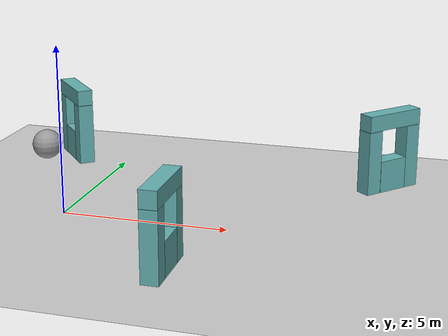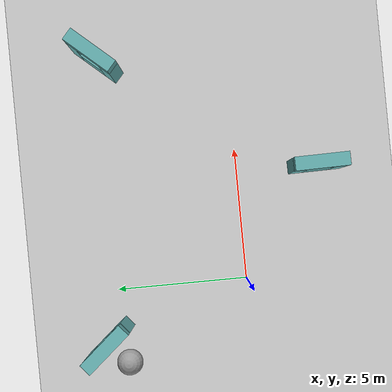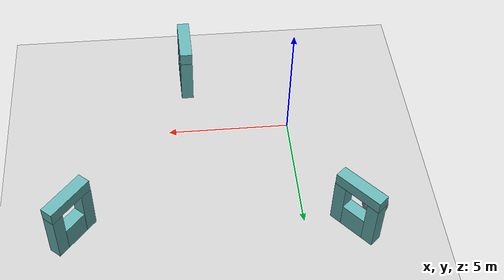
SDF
<sdf version="1.6">
 <world name="default">
  <model name="ground_plane">
   <static>1</static>
   <link name="link">
    <collision name="collision">
     <geometry><plane><normal>0 0 1</normal><size>100 100</size></plane></geometry>
     <surface>
      <contact><collide_bitmask>65535</collide_bitmask></contact>
      <friction><ode><mu>100</mu><mu2>50</mu2></ode></friction>
     </surface>
    </collision>
    <visual name="visual">
     <cast_shadows>0</cast_shadows>
     <geometry><plane><normal>0 0 1</normal><size>100 100</size></plane></geometry>
     <material>
      <script><uri>file://media/materials/scripts/gazebo.material</uri><name>Gazebo/Grey</name></script>
     </material>
    </visual>
   </link>
  </model>
  <light name="sun" type="directional">
   <pose>0 0 10 0 -0 0</pose>
   <diffuse>0.8 0.8 0.8 1</diffuse>
   <specular>0.2 0.2 0.2 1</specular>
   <attenuation>
    <range>1000</range>
    <constant>0.9</constant>
    <linear>0.01</linear>
    <quadratic>0.001</quadratic>
   </attenuation>
   <direction>-0.5 0.1 -0.9</direction>
  </light>
  <plugin name="ros_interface_plugin" filename="librotors_gazebo_ros_interface_plugin.so"/>
  <spherical_coordinates>
   <surface_model>EARTH_WGS84</surface_model>
   <latitude_deg>47.3667</latitude_deg>
   <longitude_deg>8.55</longitude_deg>
   <elevation>500</elevation>
   <heading_deg>0</heading_deg>
  </spherical_coordinates>
  <physics name="default_physics" default="0" type="ode">
   <ode>
    <solver>
     <type>quick</type>
     <iters>1000</iters>
     <sor>1.3</sor>
     <use_dynamic_moi_rescaling>0</use_dynamic_moi_rescaling>
    </solver>
    <constraints>
     <cfm>0</cfm>
     <erp>0.2</erp>
     <contact_max_correcting_vel>100</contact_max_correcting_vel>
     <contact_surface_layer>0.001</contact_surface_layer>
    </constraints>
   </ode>
   <max_step_size>0.01</max_step_size>
   <real_time_factor>1</real_time_factor>
   <real_time_update_rate>100</real_time_update_rate>
  </physics>
  <gravity>0 0 -9.8</gravity>
  <magnetic_field>6e-06 2.3e-05 -4.2e-05</magnetic_field>
  <atmosphere type="adiabatic"/>
  <scene><ambient>0.4 0.4 0.4 1</ambient><background>0.7 0.7 0.7 1</background><shadows>1</shadows></scene>
  <model name="blue_Gate">
   <link name="link_clone">
    <pose>-1.72842 -0.460553 0.737999 0 -0 0</pose>
    <inertial>
     <mass>1</mass>
     <inertia>
      <ixx>0.166667</ixx>
      <ixy>0</ixy>
      <ixz>0</ixz>
      <iyy>0.166667</iyy>
      <iyz>0</iyz>
      <izz>0.166667</izz>
     </inertia>
    </inertial>
    <visual name="visual">
     <geometry><box><size>0.5 0.5 2.5</size></box></geometry>
     <material>
      <script><name>Gazebo/Grey</name><uri>file://media/materials/scripts/gazebo.material</uri></script>
      <shader type="pixel"><normal_map>__default__</normal_map></shader>
      <ambient>0.3 0.3 0.3 1</ambient>
      <diffuse>0.4 0.7 0.7 1</diffuse>
      <specular>0.01 0.01 0.01 1</specular>
      <emissive>0 0 0 1</emissive>
     </material>
    </visual>
    <collision name="collision">
     <geometry><box><size>0.5 0.5 2.5</size></box></geometry>
     <surface>
      <friction>
       <ode><mu>1</mu><mu2>1</mu2><fdir1>0 0 0</fdir1><slip1>0</slip1><slip2>0</slip2></ode>
       <torsional>
        <coefficient>1</coefficient>
        <patch_radius>0</patch_radius>
        <surface_radius>0</surface_radius>
        <use_patch_radius>1</use_patch_radius>
        <ode><slip>0</slip></ode>
       </torsional>
      </friction>
      <bounce><restitution_coefficient>0</restitution_coefficient><threshold>1e+06</threshold></bounce>
      <contact>
       <collide_without_contact>0</collide_without_contact>
       <collide_without_contact_bitmask>1</collide_without_contact_bitmask>
       <collide_bitmask>1</collide_bitmask>
       <ode>
        <soft_cfm>0</soft_cfm>
        <soft_erp>0.2</soft_erp>
        <kp>1e+13</kp>
        <kd>1</kd>
        <max_vel>0.01</max_vel>
        <min_depth>0</min_depth>
       </ode>
       <bullet>
        <split_impulse>1</split_impulse>
        <split_impulse_penetration_threshold>-0.01</split_impulse_penetration_threshold>
        <soft_cfm>0</soft_cfm>
        <soft_erp>0.2</soft_erp>
        <kp>1e+13</kp>
        <kd>1</kd>
       </bullet>
      </contact>
     </surface>
    </collision>
   </link>
   <link name="link_clone_clone">
    <pose>-0.96571 -0.460553 2.25115 0 -0 0</pose>
    <inertial>
     <mass>1</mass>
     <inertia>
      <ixx>0.166667</ixx>
      <ixy>0</ixy>
      <ixz>0</ixz>
      <iyy>0.166667</iyy>
      <iyz>0</iyz>
      <izz>0.166667</izz>
     </inertia>
    </inertial>
    <visual name="visual">
     <geometry><box><size>2 0.5 0.5</size></box></geometry>
     <material>
      <script><name>Gazebo/Grey</name><uri>file://media/materials/scripts/gazebo.material</uri></script>
      <shader type="pixel"><normal_map>__default__</normal_map></shader>
      <ambient>0.3 0.3 0.3 1</ambient>
      <diffuse>0.4 0.7 0.7 1</diffuse>
      <specular>0.01 0.01 0.01 1</specular>
      <emissive>0 0 0 1</emissive>
     </material>
    </visual>
    <collision name="collision">
     <geometry><box><size>2 0.5 0.5</size></box></geometry>
     <surface>
      <friction>
       <ode><mu>1</mu><mu2>1</mu2><fdir1>0 0 0</fdir1><slip1>0</slip1><slip2>0</slip2></ode>
       <torsional>
        <coefficient>1</coefficient>
        <patch_radius>0</patch_radius>
        <surface_radius>0</surface_radius>
        <use_patch_radius>1</use_patch_radius>
        <ode><slip>0</slip></ode>
       </torsional>
      </friction>
      <bounce><restitution_coefficient>0</restitution_coefficient><threshold>1e+06</threshold></bounce>
      <contact>
       <collide_without_contact>0</collide_without_contact>
       <collide_without_contact_bitmask>1</collide_without_contact_bitmask>
       <collide_bitmask>1</collide_bitmask>
       <ode>
        <soft_cfm>0</soft_cfm>
        <soft_erp>0.2</soft_erp>
        <kp>1e+13</kp>
        <kd>1</kd>
        <max_vel>0.01</max_vel>
        <min_depth>0</min_depth>
       </ode>
       <bullet>
        <split_impulse>1</split_impulse>
        <split_impulse_penetration_threshold>-0.01</split_impulse_penetration_threshold>
        <soft_cfm>0</soft_cfm>
        <soft_erp>0.2</soft_erp>
        <kp>1e+13</kp>
        <kd>1</kd>
       </bullet>
      </contact>
     </surface>
    </collision>
   </link>
   <link name="link_clone_clone_0">
    <pose>-0.221124 -0.460553 0.737999 0 -0 0</pose>
    <inertial>
     <mass>1</mass>
     <inertia>
      <ixx>0.166667</ixx>
      <ixy>0</ixy>
      <ixz>0</ixz>
      <iyy>0.166667</iyy>
      <iyz>0</iyz>
      <izz>0.166667</izz>
     </inertia>
    </inertial>
    <visual name="visual">
     <geometry><box><size>0.5 0.5 2.5</size></box></geometry>
     <material>
      <script><name>Gazebo/Grey</name><uri>file://media/materials/scripts/gazebo.material</uri></script>
      <shader type="pixel"><normal_map>__default__</normal_map></shader>
      <ambient>0.3 0.3 0.3 1</ambient>
      <diffuse>0.4 0.7 0.7 1</diffuse>
      <specular>0.01 0.01 0.01 1</specular>
      <emissive>0 0 0 1</emissive>
     </material>
    </visual>
    <collision name="collision">
     <geometry><box><size>0.5 0.5 2.5</size></box></geometry>
     <surface>
      <friction>
       <ode><mu>1</mu><mu2>1</mu2><fdir1>0 0 0</fdir1><slip1>0</slip1><slip2>0</slip2></ode>
       <torsional>
        <coefficient>1</coefficient>
        <patch_radius>0</patch_radius>
        <surface_radius>0</surface_radius>
        <use_patch_radius>1</use_patch_radius>
        <ode><slip>0</slip></ode>
       </torsional>
      </friction>
      <bounce><restitution_coefficient>0</restitution_coefficient><threshold>1e+06</threshold></bounce>
      <contact>
       <collide_without_contact>0</collide_without_contact>
       <collide_without_contact_bitmask>1</collide_without_contact_bitmask>
       <collide_bitmask>1</collide_bitmask>
       <ode>
        <soft_cfm>0</soft_cfm>
        <soft_erp>0.2</soft_erp>
        <kp>1e+13</kp>
        <kd>1</kd>
        <max_vel>0.01</max_vel>
        <min_depth>0</min_depth>
       </ode>
       <bullet>
        <split_impulse>1</split_impulse>
        <split_impulse_penetration_threshold>-0.01</split_impulse_penetration_threshold>
        <soft_cfm>0</soft_cfm>
        <soft_erp>0.2</soft_erp>
        <kp>1e+13</kp>
        <kd>1</kd>
       </bullet>
      </contact>
     </surface>
    </collision>
   </link>
   <link name="link_clone_clone_clone">
    <pose>-0.971925 -0.460553 0.239893 0 -0 0</pose>
    <inertial>
     <mass>1</mass>
     <inertia>
      <ixx>0.166667</ixx>
      <ixy>0</ixy>
      <ixz>0</ixz>
      <iyy>0.166667</iyy>
      <iyz>0</iyz>
      <izz>0.166667</izz>
     </inertia>
    </inertial>
    <visual name="visual">
     <geometry><box><size>1 0.5 1.5</size></box></geometry>
     <material>
      <script><name>Gazebo/Grey</name><uri>file://media/materials/scripts/gazebo.material</uri></script>
      <shader type="pixel"><normal_map>__default__</normal_map></shader>
      <ambient>0.3 0.3 0.3 1</ambient>
      <diffuse>0.4 0.7 0.7 1</diffuse>
      <specular>0.01 0.01 0.01 1</specular>
      <emissive>0 0 0 1</emissive>
     </material>
    </visual>
    <collision name="collision">
     <geometry><box><size>1 0.5 1.5</size></box></geometry>
     <surface>
      <friction>
       <ode><mu>1</mu><mu2>1</mu2><fdir1>0 0 0</fdir1><slip1>0</slip1><slip2>0</slip2></ode>
       <torsional>
        <coefficient>1</coefficient>
        <patch_radius>0</patch_radius>
        <surface_radius>0</surface_radius>
        <use_patch_radius>1</use_patch_radius>
        <ode><slip>0</slip></ode>
       </torsional>
      </friction>
      <bounce><restitution_coefficient>0</restitution_coefficient><threshold>1e+06</threshold></bounce>
      <contact>
       <collide_without_contact>0</collide_without_contact>
       <collide_without_contact_bitmask>1</collide_without_contact_bitmask>
       <collide_bitmask>1</collide_bitmask>
       <ode>
        <soft_cfm>0</soft_cfm>
        <soft_erp>0.2</soft_erp>
        <kp>1e+13</kp>
        <kd>1</kd>
        <max_vel>0.01</max_vel>
        <min_depth>0</min_depth>
       </ode>
       <bullet>
        <split_impulse>1</split_impulse>
        <split_impulse_penetration_threshold>-0.01</split_impulse_penetration_threshold>
        <soft_cfm>0</soft_cfm>
        <soft_erp>0.2</soft_erp>
        <kp>1e+13</kp>
        <kd>1</kd>
       </bullet>
      </contact>
     </surface>
    </collision>
   </link>
   <static>1</static>
   <pose>4.58952 -3.97892 0 0 0 -1.55613</pose>
  </model>
  <model name="blue_Gate_clone">
   <link name="link_clone">
    <pose>-1.72842 -0.460553 0.737999 0 -0 0</pose>
    <inertial>
     <mass>1</mass>
     <inertia>
      <ixx>0.166667</ixx>
      <ixy>0</ixy>
      <ixz>0</ixz>
      <iyy>0.166667</iyy>
      <iyz>0</iyz>
      <izz>0.166667</izz>
     </inertia>
    </inertial>
    <visual name="visual">
     <geometry><box><size>0.5 0.5 2.5</size></box></geometry>
     <material>
      <script><name>Gazebo/Grey</name><uri>file://media/materials/scripts/gazebo.material</uri></script>
      <shader type="pixel"><normal_map>__default__</normal_map></shader>
      <ambient>0.3 0.3 0.3 1</ambient>
      <diffuse>0.4 0.7 0.7 1</diffuse>
      <specular>0.01 0.01 0.01 1</specular>
      <emissive>0 0 0 1</emissive>
     </material>
    </visual>
    <collision name="collision">
     <geometry><box><size>0.5 0.5 2.5</size></box></geometry>
     <surface>
      <friction>
       <ode><mu>1</mu><mu2>1</mu2><fdir1>0 0 0</fdir1><slip1>0</slip1><slip2>0</slip2></ode>
       <torsional>
        <coefficient>1</coefficient>
        <patch_radius>0</patch_radius>
        <surface_radius>0</surface_radius>
        <use_patch_radius>1</use_patch_radius>
        <ode><slip>0</slip></ode>
       </torsional>
      </friction>
      <bounce><restitution_coefficient>0</restitution_coefficient><threshold>1e+06</threshold></bounce>
      <contact>
       <collide_without_contact>0</collide_without_contact>
       <collide_without_contact_bitmask>1</collide_without_contact_bitmask>
       <collide_bitmask>1</collide_bitmask>
       <ode>
        <soft_cfm>0</soft_cfm>
        <soft_erp>0.2</soft_erp>
        <kp>1e+13</kp>
        <kd>1</kd>
        <max_vel>0.01</max_vel>
        <min_depth>0</min_depth>
       </ode>
       <bullet>
        <split_impulse>1</split_impulse>
        <split_impulse_penetration_threshold>-0.01</split_impulse_penetration_threshold>
        <soft_cfm>0</soft_cfm>
        <soft_erp>0.2</soft_erp>
        <kp>1e+13</kp>
        <kd>1</kd>
       </bullet>
      </contact>
     </surface>
    </collision>
   </link>
   <link name="link_clone_clone">
    <pose>-0.96571 -0.460553 2.25115 0 -0 0</pose>
    <inertial>
     <mass>1</mass>
     <inertia>
      <ixx>0.166667</ixx>
      <ixy>0</ixy>
      <ixz>0</ixz>
      <iyy>0.166667</iyy>
      <iyz>0</iyz>
      <izz>0.166667</izz>
     </inertia>
    </inertial>
    <visual name="visual">
     <geometry><box><size>2 0.5 0.5</size></box></geometry>
     <material>
      <script><name>Gazebo/Grey</name><uri>file://media/materials/scripts/gazebo.material</uri></script>
      <shader type="pixel"><normal_map>__default__</normal_map></shader>
      <ambient>0.3 0.3 0.3 1</ambient>
      <diffuse>0.4 0.7 0.7 1</diffuse>
      <specular>0.01 0.01 0.01 1</specular>
      <emissive>0 0 0 1</emissive>
     </material>
    </visual>
    <collision name="collision">
     <geometry><box><size>2 0.5 0.5</size></box></geometry>
     <surface>
      <friction>
       <ode><mu>1</mu><mu2>1</mu2><fdir1>0 0 0</fdir1><slip1>0</slip1><slip2>0</slip2></ode>
       <torsional>
        <coefficient>1</coefficient>
        <patch_radius>0</patch_radius>
        <surface_radius>0</surface_radius>
        <use_patch_radius>1</use_patch_radius>
        <ode><slip>0</slip></ode>
       </torsional>
      </friction>
      <bounce><restitution_coefficient>0</restitution_coefficient><threshold>1e+06</threshold></bounce>
      <contact>
       <collide_without_contact>0</collide_without_contact>
       <collide_without_contact_bitmask>1</collide_without_contact_bitmask>
       <collide_bitmask>1</collide_bitmask>
       <ode>
        <soft_cfm>0</soft_cfm>
        <soft_erp>0.2</soft_erp>
        <kp>1e+13</kp>
        <kd>1</kd>
        <max_vel>0.01</max_vel>
        <min_depth>0</min_depth>
       </ode>
       <bullet>
        <split_impulse>1</split_impulse>
        <split_impulse_penetration_threshold>-0.01</split_impulse_penetration_threshold>
        <soft_cfm>0</soft_cfm>
        <soft_erp>0.2</soft_erp>
        <kp>1e+13</kp>
        <kd>1</kd>
       </bullet>
      </contact>
     </surface>
    </collision>
   </link>
   <link name="link_clone_clone_0">
    <pose>-0.221124 -0.460553 0.737999 0 -0 0</pose>
    <inertial>
     <mass>1</mass>
     <inertia>
      <ixx>0.166667</ixx>
      <ixy>0</ixy>
      <ixz>0</ixz>
      <iyy>0.166667</iyy>
      <iyz>0</iyz>
      <izz>0.166667</izz>
     </inertia>
    </inertial>
    <visual name="visual">
     <geometry><box><size>0.5 0.5 2.5</size></box></geometry>
     <material>
      <script><name>Gazebo/Grey</name><uri>file://media/materials/scripts/gazebo.material</uri></script>
      <shader type="pixel"><normal_map>__default__</normal_map></shader>
      <ambient>0.3 0.3 0.3 1</ambient>
      <diffuse>0.4 0.7 0.7 1</diffuse>
      <specular>0.01 0.01 0.01 1</specular>
      <emissive>0 0 0 1</emissive>
     </material>
    </visual>
    <collision name="collision">
     <geometry><box><size>0.5 0.5 2.5</size></box></geometry>
     <surface>
      <friction>
       <ode><mu>1</mu><mu2>1</mu2><fdir1>0 0 0</fdir1><slip1>0</slip1><slip2>0</slip2></ode>
       <torsional>
        <coefficient>1</coefficient>
        <patch_radius>0</patch_radius>
        <surface_radius>0</surface_radius>
        <use_patch_radius>1</use_patch_radius>
        <ode><slip>0</slip></ode>
       </torsional>
      </friction>
      <bounce><restitution_coefficient>0</restitution_coefficient><threshold>1e+06</threshold></bounce>
      <contact>
       <collide_without_contact>0</collide_without_contact>
       <collide_without_contact_bitmask>1</collide_without_contact_bitmask>
       <collide_bitmask>1</collide_bitmask>
       <ode>
        <soft_cfm>0</soft_cfm>
        <soft_erp>0.2</soft_erp>
        <kp>1e+13</kp>
        <kd>1</kd>
        <max_vel>0.01</max_vel>
        <min_depth>0</min_depth>
       </ode>
       <bullet>
        <split_impulse>1</split_impulse>
        <split_impulse_penetration_threshold>-0.01</split_impulse_penetration_threshold>
        <soft_cfm>0</soft_cfm>
        <soft_erp>0.2</soft_erp>
        <kp>1e+13</kp>
        <kd>1</kd>
       </bullet>
      </contact>
     </surface>
    </collision>
   </link>
   <link name="link_clone_clone_clone">
    <pose>-0.971925 -0.460553 0.239893 0 -0 0</pose>
    <inertial>
     <mass>1</mass>
     <inertia>
      <ixx>0.166667</ixx>
      <ixy>0</ixy>
      <ixz>0</ixz>
      <iyy>0.166667</iyy>
      <iyz>0</iyz>
      <izz>0.166667</izz>
     </inertia>
    </inertial>
    <visual name="visual">
     <geometry><box><size>1 0.5 1.5</size></box></geometry>
     <material>
      <script><name>Gazebo/Grey</name><uri>file://media/materials/scripts/gazebo.material</uri></script>
      <shader type="pixel"><normal_map>__default__</normal_map></shader>
      <ambient>0.3 0.3 0.3 1</ambient>
      <diffuse>0.4 0.7 0.7 1</diffuse>
      <specular>0.01 0.01 0.01 1</specular>
      <emissive>0 0 0 1</emissive>
     </material>
    </visual>
    <collision name="collision">
     <geometry><box><size>1 0.5 1.5</size></box></geometry>
     <surface>
      <friction>
       <ode><mu>1</mu><mu2>1</mu2><fdir1>0 0 0</fdir1><slip1>0</slip1><slip2>0</slip2></ode>
       <torsional>
        <coefficient>1</coefficient>
        <patch_radius>0</patch_radius>
        <surface_radius>0</surface_radius>
        <use_patch_radius>1</use_patch_radius>
        <ode><slip>0</slip></ode>
       </torsional>
      </friction>
      <bounce><restitution_coefficient>0</restitution_coefficient><threshold>1e+06</threshold></bounce>
      <contact>
       <collide_without_contact>0</collide_without_contact>
       <collide_without_contact_bitmask>1</collide_without_contact_bitmask>
       <collide_bitmask>1</collide_bitmask>
       <ode>
        <soft_cfm>0</soft_cfm>
        <soft_erp>0.2</soft_erp>
        <kp>1e+13</kp>
        <kd>1</kd>
        <max_vel>0.01</max_vel>
        <min_depth>0</min_depth>
       </ode>
       <bullet>
        <split_impulse>1</split_impulse>
        <split_impulse_penetration_threshold>-0.01</split_impulse_penetration_threshold>
        <soft_cfm>0</soft_cfm>
        <soft_erp>0.2</soft_erp>
        <kp>1e+13</kp>
        <kd>1</kd>
       </bullet>
      </contact>
     </surface>
    </collision>
   </link>
   <static>1</static>
   <pose>9.16123 5.97477 0 0 -0 0.851272</pose>
  </model>
  <model name="blue_Gate_clone_clone">
   <link name="link_clone">
    <pose>-1.72842 -0.460553 0.737999 0 -0 0</pose>
    <inertial>
     <mass>1</mass>
     <inertia>
      <ixx>0.166667</ixx>
      <ixy>0</ixy>
      <ixz>0</ixz>
      <iyy>0.166667</iyy>
      <iyz>0</iyz>
      <izz>0.166667</izz>
     </inertia>
    </inertial>
    <visual name="visual">
     <geometry><box><size>0.5 0.5 2.5</size></box></geometry>
     <material>
      <script><name>Gazebo/Grey</name><uri>file://media/materials/scripts/gazebo.material</uri></script>
      <shader type="pixel"><normal_map>__default__</normal_map></shader>
      <ambient>0.3 0.3 0.3 1</ambient>
      <diffuse>0.4 0.7 0.7 1</diffuse>
      <specular>0.01 0.01 0.01 1</specular>
      <emissive>0 0 0 1</emissive>
     </material>
    </visual>
    <collision name="collision">
     <geometry><box><size>0.5 0.5 2.5</size></box></geometry>
     <surface>
      <friction>
       <ode><mu>1</mu><mu2>1</mu2><fdir1>0 0 0</fdir1><slip1>0</slip1><slip2>0</slip2></ode>
       <torsional>
        <coefficient>1</coefficient>
        <patch_radius>0</patch_radius>
        <surface_radius>0</surface_radius>
        <use_patch_radius>1</use_patch_radius>
        <ode><slip>0</slip></ode>
       </torsional>
      </friction>
      <bounce><restitution_coefficient>0</restitution_coefficient><threshold>1e+06</threshold></bounce>
      <contact>
       <collide_without_contact>0</collide_without_contact>
       <collide_without_contact_bitmask>1</collide_without_contact_bitmask>
       <collide_bitmask>1</collide_bitmask>
       <ode>
        <soft_cfm>0</soft_cfm>
        <soft_erp>0.2</soft_erp>
        <kp>1e+13</kp>
        <kd>1</kd>
        <max_vel>0.01</max_vel>
        <min_depth>0</min_depth>
       </ode>
       <bullet>
        <split_impulse>1</split_impulse>
        <split_impulse_penetration_threshold>-0.01</split_impulse_penetration_threshold>
        <soft_cfm>0</soft_cfm>
        <soft_erp>0.2</soft_erp>
        <kp>1e+13</kp>
        <kd>1</kd>
       </bullet>
      </contact>
     </surface>
    </collision>
   </link>
   <link name="link_clone_clone">
    <pose>-0.96571 -0.460553 2.25115 0 -0 0</pose>
    <inertial>
     <mass>1</mass>
     <inertia>
      <ixx>0.166667</ixx>
      <ixy>0</ixy>
      <ixz>0</ixz>
      <iyy>0.166667</iyy>
      <iyz>0</iyz>
      <izz>0.166667</izz>
     </inertia>
    </inertial>
    <visual name="visual">
     <geometry><box><size>2 0.5 0.5</size></box></geometry>
     <material>
      <script><name>Gazebo/Grey</name><uri>file://media/materials/scripts/gazebo.material</uri></script>
      <shader type="pixel"><normal_map>__default__</normal_map></shader>
      <ambient>0.3 0.3 0.3 1</ambient>
      <diffuse>0.4 0.7 0.7 1</diffuse>
      <specular>0.01 0.01 0.01 1</specular>
      <emissive>0 0 0 1</emissive>
     </material>
    </visual>
    <collision name="collision">
     <geometry><box><size>2 0.5 0.5</size></box></geometry>
     <surface>
      <friction>
       <ode><mu>1</mu><mu2>1</mu2><fdir1>0 0 0</fdir1><slip1>0</slip1><slip2>0</slip2></ode>
       <torsional>
        <coefficient>1</coefficient>
        <patch_radius>0</patch_radius>
        <surface_radius>0</surface_radius>
        <use_patch_radius>1</use_patch_radius>
        <ode><slip>0</slip></ode>
       </torsional>
      </friction>
      <bounce><restitution_coefficient>0</restitution_coefficient><threshold>1e+06</threshold></bounce>
      <contact>
       <collide_without_contact>0</collide_without_contact>
       <collide_without_contact_bitmask>1</collide_without_contact_bitmask>
       <collide_bitmask>1</collide_bitmask>
       <ode>
        <soft_cfm>0</soft_cfm>
        <soft_erp>0.2</soft_erp>
        <kp>1e+13</kp>
        <kd>1</kd>
        <max_vel>0.01</max_vel>
        <min_depth>0</min_depth>
       </ode>
       <bullet>
        <split_impulse>1</split_impulse>
        <split_impulse_penetration_threshold>-0.01</split_impulse_penetration_threshold>
        <soft_cfm>0</soft_cfm>
        <soft_erp>0.2</soft_erp>
        <kp>1e+13</kp>
        <kd>1</kd>
       </bullet>
      </contact>
     </surface>
    </collision>
   </link>
   <link name="link_clone_clone_0">
    <pose>-0.221124 -0.460553 0.737999 0 -0 0</pose>
    <inertial>
     <mass>1</mass>
     <inertia>
      <ixx>0.166667</ixx>
      <ixy>0</ixy>
      <ixz>0</ixz>
      <iyy>0.166667</iyy>
      <iyz>0</iyz>
      <izz>0.166667</izz>
     </inertia>
    </inertial>
    <visual name="visual">
     <geometry><box><size>0.5 0.5 2.5</size></box></geometry>
     <material>
      <script><name>Gazebo/Grey</name><uri>file://media/materials/scripts/gazebo.material</uri></script>
      <shader type="pixel"><normal_map>__default__</normal_map></shader>
      <ambient>0.3 0.3 0.3 1</ambient>
      <diffuse>0.4 0.7 0.7 1</diffuse>
      <specular>0.01 0.01 0.01 1</specular>
      <emissive>0 0 0 1</emissive>
     </material>
    </visual>
    <collision name="collision">
     <geometry><box><size>0.5 0.5 2.5</size></box></geometry>
     <surface>
      <friction>
       <ode><mu>1</mu><mu2>1</mu2><fdir1>0 0 0</fdir1><slip1>0</slip1><slip2>0</slip2></ode>
       <torsional>
        <coefficient>1</coefficient>
        <patch_radius>0</patch_radius>
        <surface_radius>0</surface_radius>
        <use_patch_radius>1</use_patch_radius>
        <ode><slip>0</slip></ode>
       </torsional>
      </friction>
      <bounce><restitution_coefficient>0</restitution_coefficient><threshold>1e+06</threshold></bounce>
      <contact>
       <collide_without_contact>0</collide_without_contact>
       <collide_without_contact_bitmask>1</collide_without_contact_bitmask>
       <collide_bitmask>1</collide_bitmask>
       <ode>
        <soft_cfm>0</soft_cfm>
        <soft_erp>0.2</soft_erp>
        <kp>1e+13</kp>
        <kd>1</kd>
        <max_vel>0.01</max_vel>
        <min_depth>0</min_depth>
       </ode>
       <bullet>
        <split_impulse>1</split_impulse>
        <split_impulse_penetration_threshold>-0.01</split_impulse_penetration_threshold>
        <soft_cfm>0</soft_cfm>
        <soft_erp>0.2</soft_erp>
        <kp>1e+13</kp>
        <kd>1</kd>
       </bullet>
      </contact>
     </surface>
    </collision>
   </link>
   <link name="link_clone_clone_clone">
    <pose>-0.971925 -0.460553 0.239893 0 -0 0</pose>
    <inertial>
     <mass>1</mass>
     <inertia>
      <ixx>0.166667</ixx>
      <ixy>0</ixy>
      <ixz>0</ixz>
      <iyy>0.166667</iyy>
      <iyz>0</iyz>
      <izz>0.166667</izz>
     </inertia>
    </inertial>
    <visual name="visual">
     <geometry><box><size>1 0.5 1.5</size></box></geometry>
     <material>
      <script><name>Gazebo/Grey</name><uri>file://media/materials/scripts/gazebo.material</uri></script>
      <shader type="pixel"><normal_map>__default__</normal_map></shader>
      <ambient>0.3 0.3 0.3 1</ambient>
      <diffuse>0.4 0.7 0.7 1</diffuse>
      <specular>0.01 0.01 0.01 1</specular>
      <emissive>0 0 0 1</emissive>
     </material>
    </visual>
    <collision name="collision">
     <geometry><box><size>1 0.5 1.5</size></box></geometry>
     <surface>
      <friction>
       <ode><mu>1</mu><mu2>1</mu2><fdir1>0 0 0</fdir1><slip1>0</slip1><slip2>0</slip2></ode>
       <torsional>
        <coefficient>1</coefficient>
        <patch_radius>0</patch_radius>
        <surface_radius>0</surface_radius>
        <use_patch_radius>1</use_patch_radius>
        <ode><slip>0</slip></ode>
       </torsional>
      </friction>
      <bounce><restitution_coefficient>0</restitution_coefficient><threshold>1e+06</threshold></bounce>
      <contact>
       <collide_without_contact>0</collide_without_contact>
       <collide_without_contact_bitmask>1</collide_without_contact_bitmask>
       <collide_bitmask>1</collide_bitmask>
       <ode>
        <soft_cfm>0</soft_cfm>
        <soft_erp>0.2</soft_erp>
        <kp>1e+13</kp>
        <kd>1</kd>
        <max_vel>0.01</max_vel>
        <min_depth>0</min_depth>
       </ode>
       <bullet>
        <split_impulse>1</split_impulse>
        <split_impulse_penetration_threshold>-0.01</split_impulse_penetration_threshold>
        <soft_cfm>0</soft_cfm>
        <soft_erp>0.2</soft_erp>
        <kp>1e+13</kp>
        <kd>1</kd>
       </bullet>
      </contact>
     </surface>
    </collision>
   </link>
   <static>1</static>
   <pose>-2.87663 5.84366 0 0 -0 2.2818</pose>
  </model>
  <model name="unit_sphere">
   <pose>-2.76703 4.75493 0.5 0 -0 2.28228</pose>
   <link name="link">
    <inertial>
     <mass>1</mass>
     <inertia><ixx>0.1</ixx><ixy>0</ixy><ixz>0</ixz><iyy>0.1</iyy><iyz>0</iyz><izz>0.1</izz></inertia>
    </inertial>
    <collision name="collision"><geometry><sphere><radius>0.5</radius></sphere></geometry></collision>
    <visual name="visual">
     <geometry><sphere><radius>0.5</radius></sphere></geometry>
     <material>
      <script><name>Gazebo/Grey</name><uri>file://media/materials/scripts/gazebo.material</uri></script>
     </material>
    </visual>
   </link>
  </model>
 </world>
</sdf>
